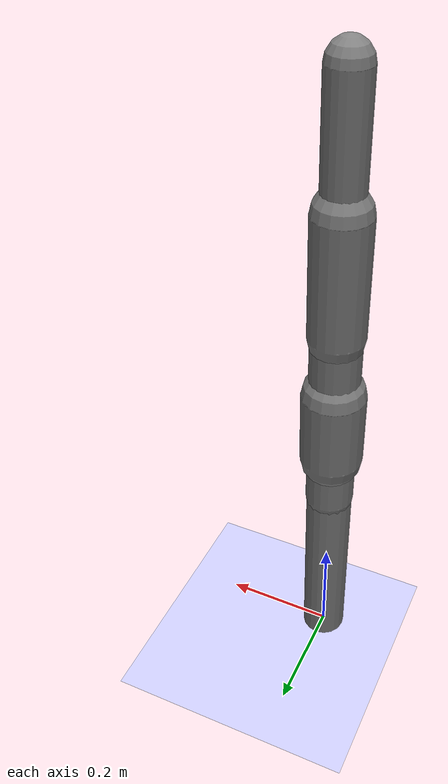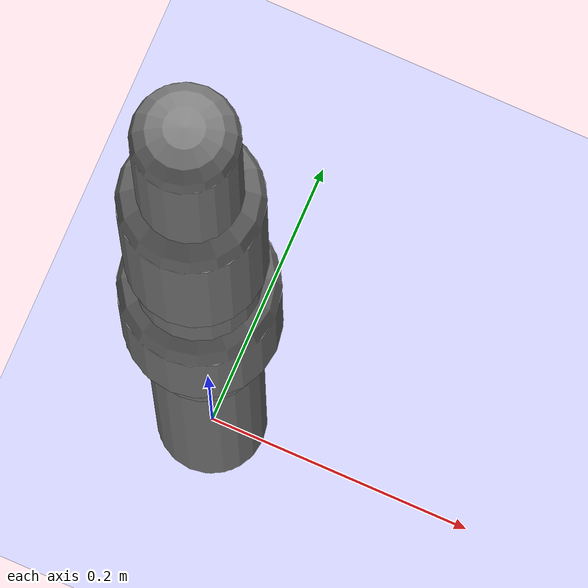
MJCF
<?xml version='1.0' encoding='UTF-8'?>
<mujoco model="robot_model">
  <worldbody>
    <light name="light" pos="0 -3 10" dir="0 0.5 -1" diffuse=".8 .8 .8" specular="0.1 0.1 0.1"/>
    <geom name="floor" type="plane" size="10.0 10.0 0.1" pos="0 0 0" rgba="0.8 0.8 1 1" contype="2" conaffinity="1"/>
    <body name="limb0" pos="0 0 0">
      <geom type="capsule" fromto="0 0 0 0 0 0.47805311459658134" size="0.04" density="1128.8080287950745" contype="1" conaffinity="2"/>
      <site type="sphere" size="0.01" name="limb0_site0" pos="0 0 0.2757924956263021"/>
      <site type="sphere" size="0.01" name="limb0_site1" pos="0 0 0.4501855606858348"/>
      <freejoint name="limb0_root"/>
      <body name="limb1" pos="0 0 0.2757924956263021">
        <geom type="capsule" fromto="0 0 0 0 0 0.2108483557747831" size="0.03176305440673138" density="688.7771406626807" contype="1" conaffinity="2"/>
        <site type="sphere" size="0.01" name="limb1_site0" pos="0 0 0.1315488757351795"/>
        <site type="sphere" size="0.01" name="limb1_site1" pos="0 0 0.0807207647042045"/>
        <site type="sphere" size="0.01" name="limb1_site2" pos="0 0 0.20255461164896735"/>
        <body name="limb2" pos="0 0 0.1315488757351795">
          <geom type="capsule" fromto="0 0 0 0 0 0.30899588021884067" size="0.037964615158167556" density="735.9268482009339" contype="1" conaffinity="2"/>
          <joint name="joint_limb1_limb2_0" type="hinge" axis="0 1 0" range="-79.19027832141104 79.19027832141104" damping="5.0"/>
        </body>
        <body name="limb3" pos="0 0 0.0807207647042045">
          <geom type="capsule" fromto="0 0 0 0 0 0.3449366956007403" size="0.04182995516077146" density="888.638751137447" contype="1" conaffinity="2"/>
          <site type="sphere" size="0.01" name="limb3_site0" pos="0 0 0.34476469369601037"/>
          <site type="sphere" size="0.01" name="limb3_site1" pos="0 0 0.197693734804722"/>
          <body name="limb4" pos="0 0 0.34476469369601037">
            <geom type="capsule" fromto="0 0 0 0 0 0.38689637571819735" size="0.03296585503229504" density="787.6117064878987" contype="1" conaffinity="2"/>
            <joint name="joint_limb3_limb4_0" type="hinge" axis="0 1 0" range="-97.60316524447805 97.60316524447805" damping="5.0"/>
          </body>
          <body name="limb5" pos="0 0 0.197693734804722">
            <geom type="capsule" fromto="0 0 0 0 0 0.1209611644315948" size="0.020475413601167402" density="418.52899181852035" contype="1" conaffinity="2"/>
            <joint name="joint_limb3_limb5_0" type="hinge" axis="0 1 0" range="-98.74425114599552 98.74425114599552" damping="5.0"/>
          </body>
          <joint name="joint_limb1_limb3_0" type="hinge" axis="1 0 0" range="-76.57739072162552 76.57739072162552" damping="5.0"/>
        </body>
        <body name="limb6" pos="0 0 0.20255461164896735">
          <geom type="capsule" fromto="0 0 0 0 0 0.4886525017141072" size="0.02730849030649112" density="1118.1587480940386" contype="1" conaffinity="2"/>
          <site type="sphere" size="0.01" name="limb6_site0" pos="0 0 0.2148602362279738"/>
          <site type="sphere" size="0.01" name="limb6_site1" pos="0 0 0.2502629485534305"/>
          <body name="limb7" pos="0 0 0.2148602362279738">
            <geom type="capsule" fromto="0 0 0 0 0 0.19942307054689806" size="0.04609395862756084" density="1147.4288306062897" contype="1" conaffinity="2"/>
            <joint name="joint_limb6_limb7_0" type="hinge" axis="0 0 1" range="-97.3556228309299 97.3556228309299" damping="5.0"/>
          </body>
          <body name="limb8" pos="0 0 0.2502629485534305">
            <geom type="capsule" fromto="0 0 0 0 0 0.1" size="0.02258212688075009" density="794.8277341934504" contype="1" conaffinity="2"/>
            <joint name="joint_limb6_limb8_0" type="hinge" axis="1 0 0" range="-42.15190616583611 42.15190616583611" damping="5.0"/>
          </body>
          <joint name="joint_limb1_limb6_0" type="hinge" axis="0 1 0" range="-80.38696577407528 80.38696577407528" damping="5.0"/>
        </body>
        <joint name="joint_limb0_limb1_0" type="hinge" axis="0 1 0" range="-72.78200781124774 72.78200781124774" damping="5.0"/>
      </body>
      <body name="limb9" pos="0 0 0.4501855606858348">
        <geom type="capsule" fromto="0 0 0 0 0 0.13252947652278277" size="0.05372058858359962" density="1100.1826029615775" contype="1" conaffinity="2"/>
        <joint name="joint_limb0_limb9_0" type="hinge" axis="0 1 0" range="-46.186401585393725 46.186401585393725" damping="5.0"/>
      </body>
    </body>
  </worldbody>
  <actuator>
    <position name="position_actuator_joint_limb0_limb1_0" joint="joint_limb0_limb1_0" gear="1.0330237717590445" inheritrange="1" kp="10.0"/>
    <position name="position_actuator_joint_limb1_limb2_0" joint="joint_limb1_limb2_0" gear="1.0104857860709995" inheritrange="1" kp="10.0"/>
    <position name="position_actuator_joint_limb1_limb3_0" joint="joint_limb1_limb3_0" gear="1.9786544527946286" inheritrange="1" kp="10.0"/>
    <position name="position_actuator_joint_limb3_limb4_0" joint="joint_limb3_limb4_0" gear="1.7459471619076385" inheritrange="1" kp="10.0"/>
    <position name="position_actuator_joint_limb3_limb5_0" joint="joint_limb3_limb5_0" gear="0.6053780887485001" inheritrange="1" kp="10.0"/>
    <position name="position_actuator_joint_limb1_limb6_0" joint="joint_limb1_limb6_0" gear="1.272740550353963" inheritrange="1" kp="10.0"/>
    <position name="position_actuator_joint_limb6_limb7_0" joint="joint_limb6_limb7_0" gear="1.2514069354827302" inheritrange="1" kp="10.0"/>
    <position name="position_actuator_joint_limb6_limb8_0" joint="joint_limb6_limb8_0" gear="1.5515760021784972" inheritrange="1" kp="10.0"/>
    <position name="position_actuator_joint_limb0_limb9_0" joint="joint_limb0_limb9_0" gear="0.5181521235082891" inheritrange="1" kp="10.0"/>
  </actuator>
</mujoco>
